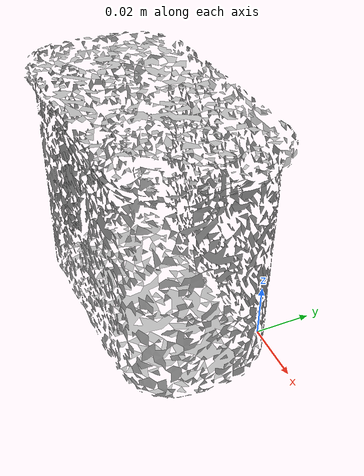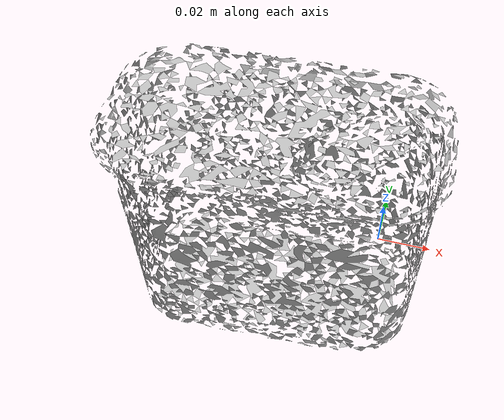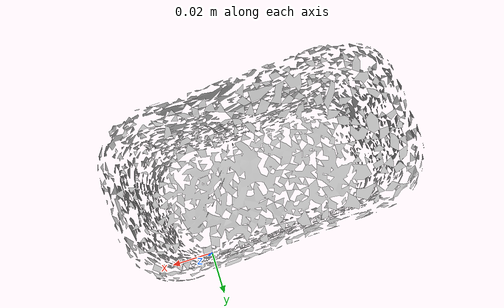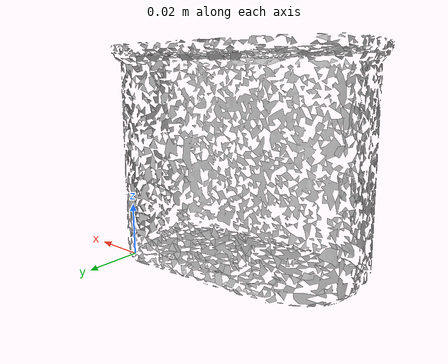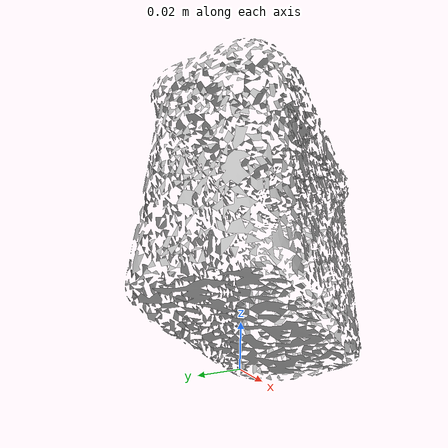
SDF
<?xml version='1.0'?>
<sdf version="1.4">
  <model name="potted_meat_can">
    <static>false</static>
    <link name="link">
      <inertial>
        <pose>-0.032840352216858736 -0.02635271439745596 0.03783085009135961 -1.577430392595329 -0.010759772887281145 1.6258710123374907</pose>
        <mass>0.0003541315255998319</mass>
        <inertia>
          <ixx>4.287366513749587e-07</ixx>
          <ixy>-1.8690011691063924e-24</ixy>
          <ixz>-2.3365635829302835e-24</ixz>
          <iyy>3.228086963634996e-07</iyy>
          <iyz>-1.3983415801133898e-25</iyz>
          <izz>2.492539316611725e-07</izz>
        </inertia>
      </inertial>
      <collision name="collision">
        <geometry>
          <mesh>
            <!-- Use a downsampled mesh for collisions -->
            <uri>model://010_potted_meat_can/downsampled.obj</uri>
	        </mesh>
        </geometry>
        <surface>
      </surface>
      </collision>
      <visual name="visual">
        <geometry>
          <mesh>
            <uri>model://010_potted_meat_can/google_16k/textured.obj</uri>
	        </mesh>
        </geometry>
        <material>
          <script>
            <uri>model://010_potted_meat_can/potted_meat_can.material</uri>
            <name>potted_meat_can</name>
          </script>
        </material>
      </visual>
    </link>
  </model>
</sdf>
